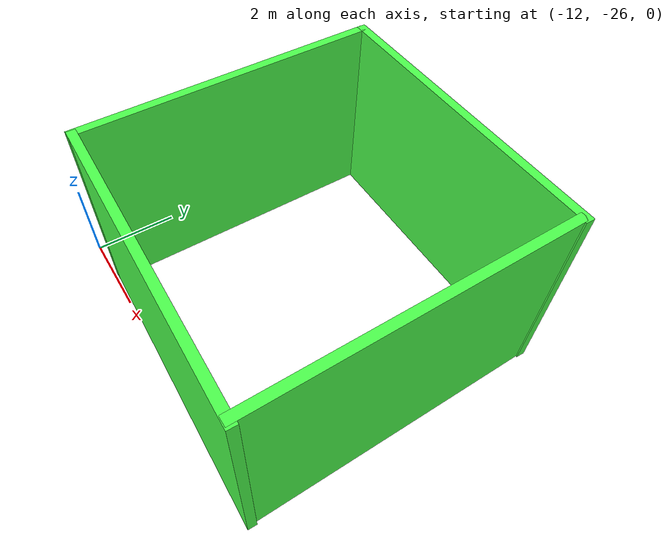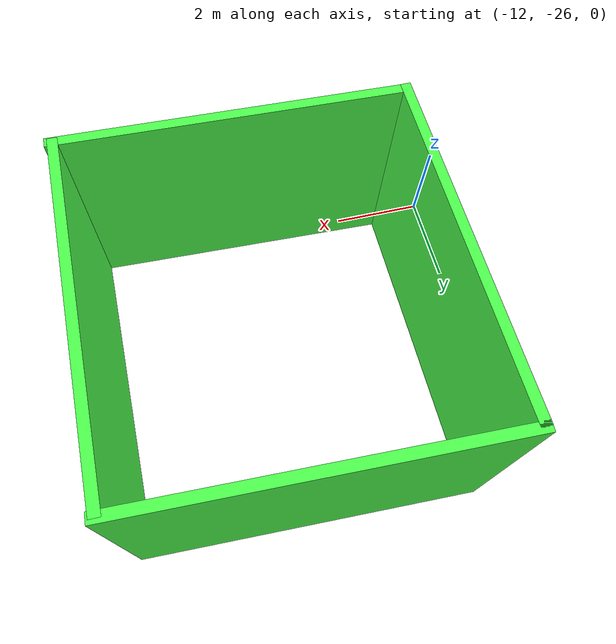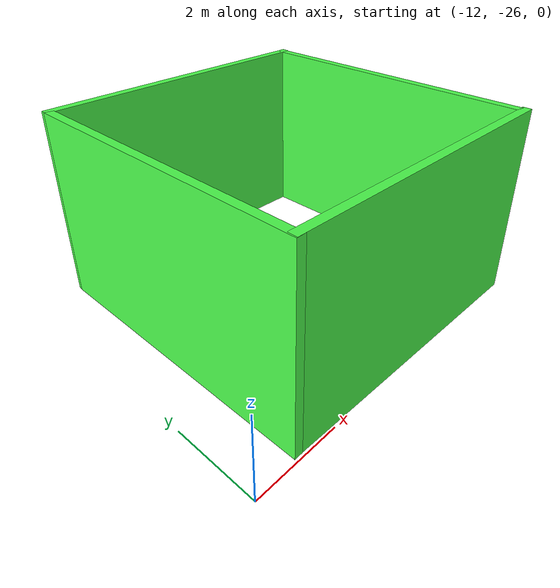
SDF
<sdf version="1.7">
 <world name="default">
  <model name="wall_clone_5_0">
   <pose>-7.5 -22.5 2.25 0 -0 0</pose>
   <frame name="closed_green_wall::__model__" attached_to="closed_green_wall::link_0">
    <pose relative_to="__model__">0 0 0 0 -0 0</pose>
   </frame>
   <link name="closed_green_wall::link_0">
    <inertial>
     <mass>1</mass>
     <inertia>
      <ixx>0.166667</ixx>
      <ixy>0</ixy>
      <ixz>0</ixz>
      <iyy>0.166667</iyy>
      <iyz>0</iyz>
      <izz>0.166667</izz>
     </inertia>
    </inertial>
    <pose relative_to="closed_green_wall::__model__">3.37098 -0.107634 -0 0 -0 0</pose>
    <visual name="visual">
     <geometry><box><size>0.2 7 4.5</size></box></geometry>
     <material>
      <lighting>1</lighting>
      <script><uri>file://media/materials/scripts/gazebo.material</uri><name>Gazebo/Grey</name></script>
      <shader type="vertex"><normal_map>__default__</normal_map></shader>
      <ambient>0.3 1 0.3 1</ambient>
      <diffuse>0.7 0.7 0.7 1</diffuse>
      <specular>0.01 0.01 0.01 1</specular>
      <emissive>0 0 0 1</emissive>
     </material>
    </visual>
    <collision name="collision">
     <geometry><box><size>0.2 7 4.5</size></box></geometry>
     <surface>
      <friction>
       <ode><mu>1</mu><mu2>1</mu2><fdir1>0 0 0</fdir1><slip1>0</slip1><slip2>0</slip2></ode>
       <torsional>
        <coefficient>1</coefficient>
        <patch_radius>0</patch_radius>
        <surface_radius>0</surface_radius>
        <use_patch_radius>1</use_patch_radius>
        <ode><slip>0</slip></ode>
       </torsional>
      </friction>
      <bounce><restitution_coefficient>0</restitution_coefficient><threshold>1e+06</threshold></bounce>
      <contact>
       <collide_without_contact>0</collide_without_contact>
       <collide_without_contact_bitmask>1</collide_without_contact_bitmask>
       <collide_bitmask>1</collide_bitmask>
       <ode>
        <soft_cfm>0</soft_cfm>
        <soft_erp>0.2</soft_erp>
        <kp>1e+13</kp>
        <kd>1</kd>
        <max_vel>0.01</max_vel>
        <min_depth>0</min_depth>
       </ode>
       <bullet>
        <split_impulse>1</split_impulse>
        <split_impulse_penetration_threshold>-0.01</split_impulse_penetration_threshold>
        <soft_cfm>0</soft_cfm>
        <soft_erp>0.2</soft_erp>
        <kp>1e+13</kp>
        <kd>1</kd>
       </bullet>
      </contact>
     </surface>
    </collision>
   </link>
   <link name="closed_green_wall::link_0_clone">
    <inertial>
     <mass>1</mass>
     <inertia>
      <ixx>0.166667</ixx>
      <ixy>0</ixy>
      <ixz>0</ixz>
      <iyy>0.166667</iyy>
      <iyz>0</iyz>
      <izz>0.166667</izz>
     </inertia>
    </inertial>
    <pose relative_to="closed_green_wall::__model__">0.024232 -3.42805 -0 0 0 -1.59986</pose>
    <visual name="visual">
     <geometry><box><size>0.2 7 4.5</size></box></geometry>
     <material>
      <lighting>1</lighting>
      <script><uri>file://media/materials/scripts/gazebo.material</uri><name>Gazebo/Grey</name></script>
      <shader type="vertex"><normal_map>__default__</normal_map></shader>
      <ambient>0.3 1 0.3 1</ambient>
      <diffuse>0.7 0.7 0.7 1</diffuse>
      <specular>0.01 0.01 0.01 1</specular>
      <emissive>0 0 0 1</emissive>
     </material>
    </visual>
    <collision name="collision">
     <geometry><box><size>0.2 7 4.5</size></box></geometry>
     <surface>
      <friction>
       <ode><mu>1</mu><mu2>1</mu2><fdir1>0 0 0</fdir1><slip1>0</slip1><slip2>0</slip2></ode>
       <torsional>
        <coefficient>1</coefficient>
        <patch_radius>0</patch_radius>
        <surface_radius>0</surface_radius>
        <use_patch_radius>1</use_patch_radius>
        <ode><slip>0</slip></ode>
       </torsional>
      </friction>
      <bounce><restitution_coefficient>0</restitution_coefficient><threshold>1e+06</threshold></bounce>
      <contact>
       <collide_without_contact>0</collide_without_contact>
       <collide_without_contact_bitmask>1</collide_without_contact_bitmask>
       <collide_bitmask>1</collide_bitmask>
       <ode>
        <soft_cfm>0</soft_cfm>
        <soft_erp>0.2</soft_erp>
        <kp>1e+13</kp>
        <kd>1</kd>
        <max_vel>0.01</max_vel>
        <min_depth>0</min_depth>
       </ode>
       <bullet>
        <split_impulse>1</split_impulse>
        <split_impulse_penetration_threshold>-0.01</split_impulse_penetration_threshold>
        <soft_cfm>0</soft_cfm>
        <soft_erp>0.2</soft_erp>
        <kp>1e+13</kp>
        <kd>1</kd>
       </bullet>
      </contact>
     </surface>
    </collision>
   </link>
   <link name="closed_green_wall::link_0_clone_0">
    <inertial>
     <mass>1</mass>
     <inertia>
      <ixx>0.166667</ixx>
      <ixy>0</ixy>
      <ixz>0</ixz>
      <iyy>0.166667</iyy>
      <iyz>0</iyz>
      <izz>0.166667</izz>
     </inertia>
    </inertial>
    <pose relative_to="closed_green_wall::__model__">-3.40001 0.065208 -0 0 -0 0</pose>
    <visual name="visual">
     <geometry><box><size>0.2 7 4.5</size></box></geometry>
     <material>
      <lighting>1</lighting>
      <script><uri>file://media/materials/scripts/gazebo.material</uri><name>Gazebo/Grey</name></script>
      <shader type="vertex"><normal_map>__default__</normal_map></shader>
      <ambient>0.3 1 0.3 1</ambient>
      <diffuse>0.7 0.7 0.7 1</diffuse>
      <specular>0.01 0.01 0.01 1</specular>
      <emissive>0 0 0 1</emissive>
     </material>
    </visual>
    <collision name="collision">
     <geometry><box><size>0.2 7 4.5</size></box></geometry>
     <surface>
      <friction>
       <ode><mu>1</mu><mu2>1</mu2><fdir1>0 0 0</fdir1><slip1>0</slip1><slip2>0</slip2></ode>
       <torsional>
        <coefficient>1</coefficient>
        <patch_radius>0</patch_radius>
        <surface_radius>0</surface_radius>
        <use_patch_radius>1</use_patch_radius>
        <ode><slip>0</slip></ode>
       </torsional>
      </friction>
      <bounce><restitution_coefficient>0</restitution_coefficient><threshold>1e+06</threshold></bounce>
      <contact>
       <collide_without_contact>0</collide_without_contact>
       <collide_without_contact_bitmask>1</collide_without_contact_bitmask>
       <collide_bitmask>1</collide_bitmask>
       <ode>
        <soft_cfm>0</soft_cfm>
        <soft_erp>0.2</soft_erp>
        <kp>1e+13</kp>
        <kd>1</kd>
        <max_vel>0.01</max_vel>
        <min_depth>0</min_depth>
       </ode>
       <bullet>
        <split_impulse>1</split_impulse>
        <split_impulse_penetration_threshold>-0.01</split_impulse_penetration_threshold>
        <soft_cfm>0</soft_cfm>
        <soft_erp>0.2</soft_erp>
        <kp>1e+13</kp>
        <kd>1</kd>
       </bullet>
      </contact>
     </surface>
    </collision>
   </link>
   <link name="closed_green_wall::link_0_clone_clone">
    <inertial>
     <mass>1</mass>
     <inertia>
      <ixx>0.166667</ixx>
      <ixy>0</ixy>
      <ixz>0</ixz>
      <iyy>0.166667</iyy>
      <iyz>0</iyz>
      <izz>0.166667</izz>
     </inertia>
    </inertial>
    <pose relative_to="closed_green_wall::__model__">0.004806 3.47046 -0 0 0 -1.59986</pose>
    <visual name="visual">
     <geometry><box><size>0.2 7 4.5</size></box></geometry>
     <material>
      <lighting>1</lighting>
      <script><uri>file://media/materials/scripts/gazebo.material</uri><name>Gazebo/Grey</name></script>
      <shader type="vertex"><normal_map>__default__</normal_map></shader>
      <ambient>0.3 1 0.3 1</ambient>
      <diffuse>0.7 0.7 0.7 1</diffuse>
      <specular>0.01 0.01 0.01 1</specular>
      <emissive>0 0 0 1</emissive>
     </material>
    </visual>
    <collision name="collision">
     <geometry><box><size>0.2 7 4.5</size></box></geometry>
     <surface>
      <friction>
       <ode><mu>1</mu><mu2>1</mu2><fdir1>0 0 0</fdir1><slip1>0</slip1><slip2>0</slip2></ode>
       <torsional>
        <coefficient>1</coefficient>
        <patch_radius>0</patch_radius>
        <surface_radius>0</surface_radius>
        <use_patch_radius>1</use_patch_radius>
        <ode><slip>0</slip></ode>
       </torsional>
      </friction>
      <bounce><restitution_coefficient>0</restitution_coefficient><threshold>1e+06</threshold></bounce>
      <contact>
       <collide_without_contact>0</collide_without_contact>
       <collide_without_contact_bitmask>1</collide_without_contact_bitmask>
       <collide_bitmask>1</collide_bitmask>
       <ode>
        <soft_cfm>0</soft_cfm>
        <soft_erp>0.2</soft_erp>
        <kp>1e+13</kp>
        <kd>1</kd>
        <max_vel>0.01</max_vel>
        <min_depth>0</min_depth>
       </ode>
       <bullet>
        <split_impulse>1</split_impulse>
        <split_impulse_penetration_threshold>-0.01</split_impulse_penetration_threshold>
        <soft_cfm>0</soft_cfm>
        <soft_erp>0.2</soft_erp>
        <kp>1e+13</kp>
        <kd>1</kd>
       </bullet>
      </contact>
     </surface>
    </collision>
   </link>
   <joint name="closed_green_wall::link_0_JOINT_1" type="fixed">
    <parent>closed_green_wall::link_0</parent>
    <child>closed_green_wall::link_0_clone_clone</child>
    <physics>
     <ode><limit><cfm>0</cfm><erp>0.2</erp></limit><suspension><cfm>0</cfm><erp>0.2</erp></suspension></ode>
    </physics>
   </joint>
   <joint name="closed_green_wall::link_0_clone_0_JOINT_3" type="fixed">
    <parent>closed_green_wall::link_0_clone_0</parent>
    <child>closed_green_wall::link_0_clone</child>
    <physics>
     <ode><limit><cfm>0</cfm><erp>0.2</erp></limit><suspension><cfm>0</cfm><erp>0.2</erp></suspension></ode>
    </physics>
   </joint>
   <joint name="closed_green_wall::link_0_clone_JOINT_0" type="fixed">
    <parent>closed_green_wall::link_0_clone</parent>
    <child>closed_green_wall::link_0</child>
    <physics>
     <ode><limit><cfm>0</cfm><erp>0.2</erp></limit><suspension><cfm>0</cfm><erp>0.2</erp></suspension></ode>
    </physics>
   </joint>
   <joint name="closed_green_wall::link_0_clone_clone_JOINT_2" type="fixed">
    <parent>closed_green_wall::link_0_clone_clone</parent>
    <child>closed_green_wall::link_0_clone_0</child>
    <physics>
     <ode><limit><cfm>0</cfm><erp>0.2</erp></limit><suspension><cfm>0</cfm><erp>0.2</erp></suspension></ode>
    </physics>
   </joint>
   <static>1</static>
  </model>
 </world>
</sdf>
